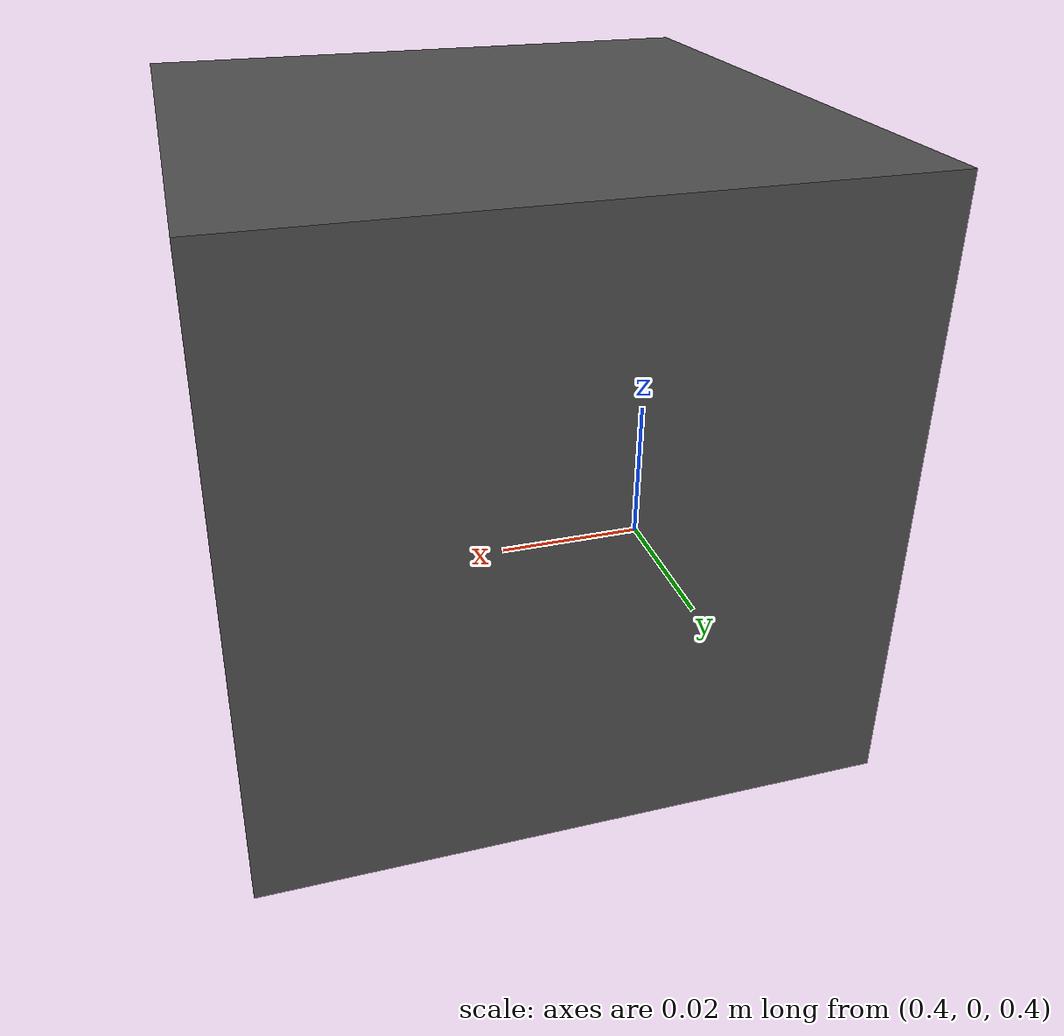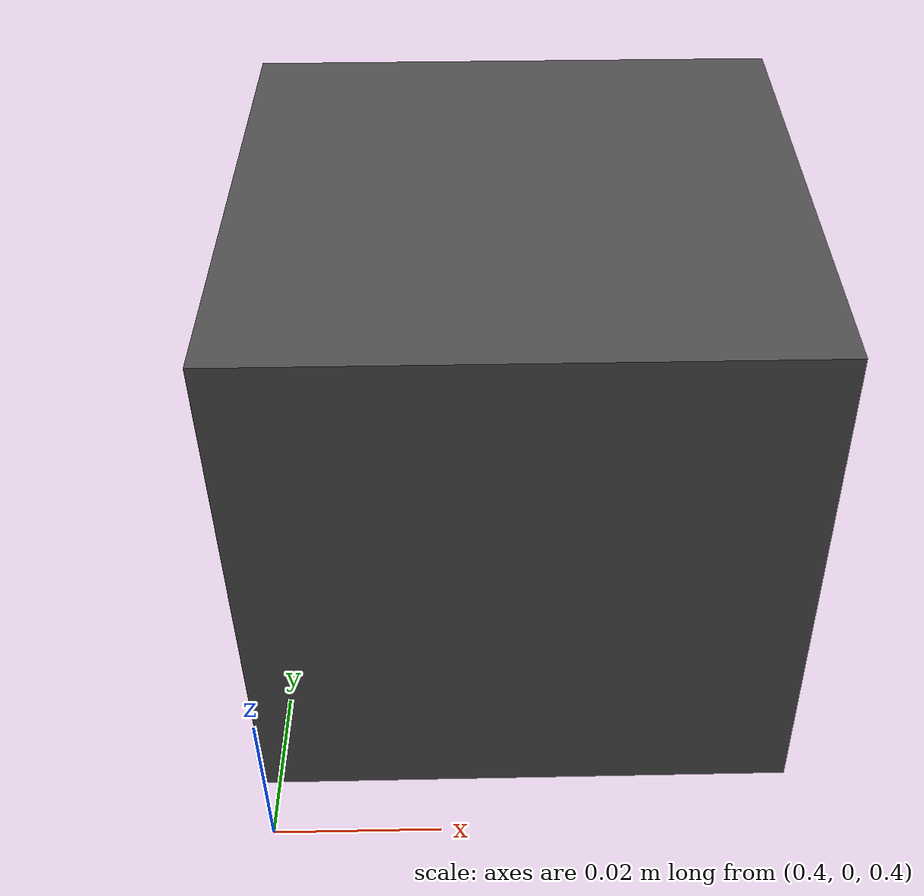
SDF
<?xml version="1.0" ?>
<sdf version="1.5">
  <world name="panda_pick_and_place">
    <!--A global light source-->
    <include>
      <uri>model://sun</uri>
    </include>
    <!--A ground plane-->
    <include>
      <uri>model://ground_plane</uri>
    </include>
    <!--A platform-->
    <include>
      <uri>model://platform</uri>
      <pose>0.4 0.4 0.209911 0 0 0</pose>
    </include>
    <!--A cube-->
    <include>
      <uri>model://cube</uri>
      <pose>0.4 0 0.41 0 0 0</pose>
    </include>
    <!--Camera settings-->
    <gui fullscreen='0'>
      <camera name='user_camera'>
        <pose>1.59801 -1.66211 1.29545 -0 0.419643 2.23219</pose>
        <view_controller>orbit</view_controller>
        <projection_type>perspective</projection_type>
      </camera>
    </gui>
  </world>
</sdf>

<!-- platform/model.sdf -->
<sdf version="1.6">
  <model name="platform">
    <static>false</static>
    <link name="dummy_upper"/>

    <joint name="world_joint" type="fixed">
      <parent>world</parent>
      <child>dummy_upper</child>
    </joint>
  </model>
</sdf>

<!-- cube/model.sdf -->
<sdf version='1.7'>
  <model name='cube'>
    <link name='link'>
      <inertial>
        <pose>0.03 0.03 0.03 0 -0 0</pose>
        <!--NOTE: Uses Polyethylene density to calculate the mass
        see https://en.wikipedia.org/wiki/Polyethylene
        -->
        <mass>0.20735999999999996</mass>
        <inertia>
          <ixx>0.00012442</ixx>
          <ixy>0</ixy>
          <ixz>0</ixz>
          <iyy>0.00012442</iyy>
          <iyz>0</iyz>
          <izz>0.00012442</izz>
        </inertia>
      </inertial>
      <visual name='visual'>
        <pose>0.03 0.03 0.03 0 -0 0</pose>
        <geometry>
          <box>
            <size>0.06 0.06 0.06</size>
          </box>
        </geometry>
        <material>
          <script>
            <uri>file://media/materials/scripts/gazebo.material</uri>
            <name>Gazebo/DarkGrey</name>
          </script>
          <shader type='pixel'/>
        </material>
      </visual>
      <collision name='collision'>
        <pose>0.03 0.03 0.03 0 -0 0</pose>
        <geometry>
          <box>
            <size>0.06 0.06 0.06</size>
          </box>
        </geometry>
        <surface>
          <!--NOTE: Used dynamic friction of clean dry plastic cube on a plastic surface
          (i.e. Polyethylene) see https://www.engineeringtoolbox.com/friction-coefficients-d_778.html
          -->
          <friction>
            <ode>
              <mu>5.2</mu>
              <mu2>5.2</mu2>
            </ode>
          </friction>
          <contact>
            <collide_bitmask>1</collide_bitmask>
            <ode>
              <kp>1e+06</kp>
              <kd>1e+06</kd>
              <max_vel>1</max_vel>
              <min_depth>0.002</min_depth>
            </ode>
            <bullet>
              <kp>1e+06</kp>
              <kd>1e+06</kd>
            </bullet>
          </contact>
        </surface>
      </collision>
    </link>
  </model>
</sdf>
